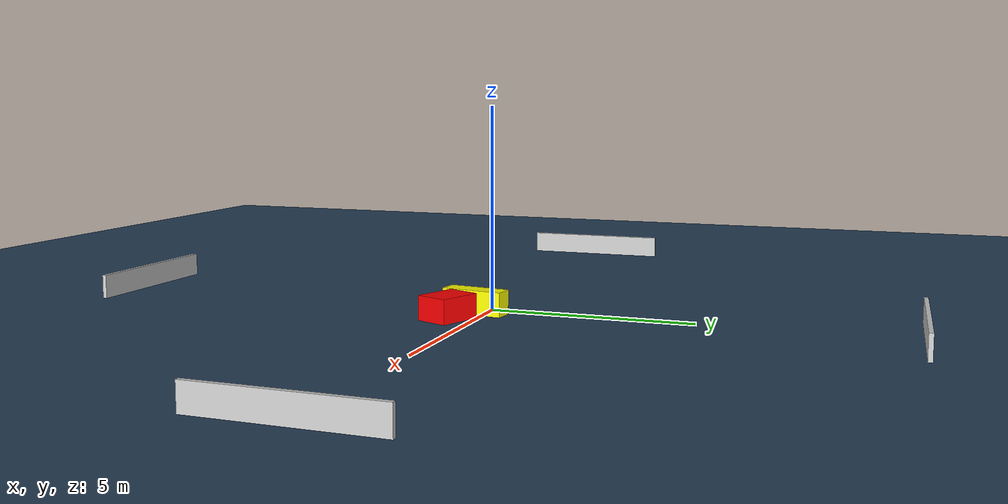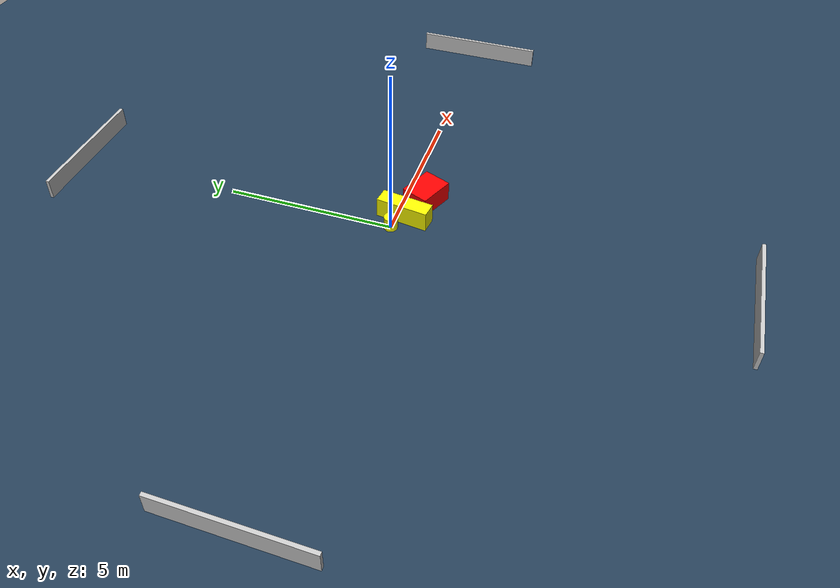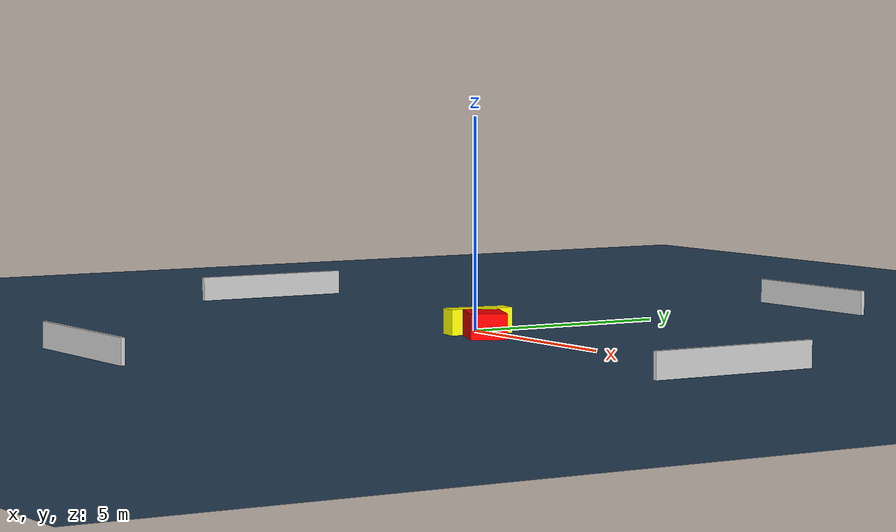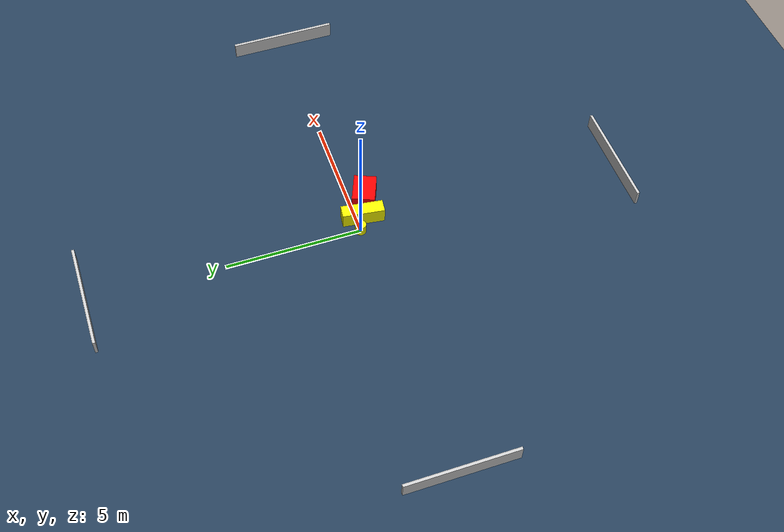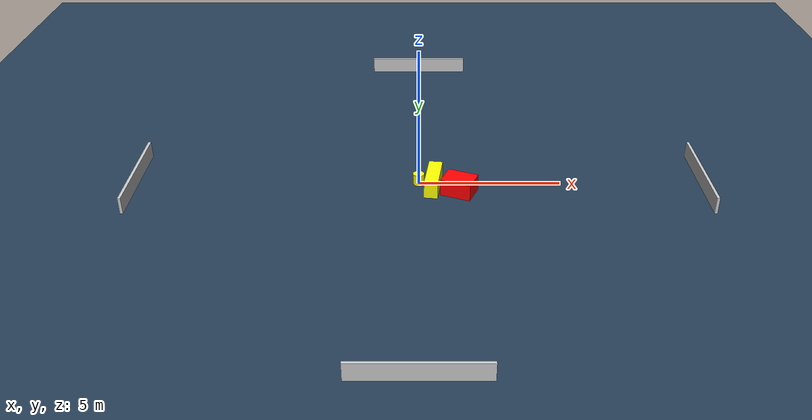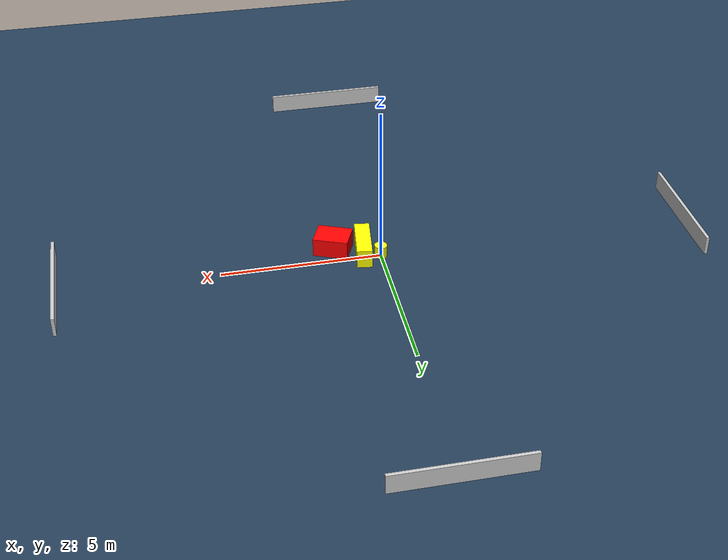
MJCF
<?xml version="1.0" ?>
<mujoco model="generated_environment">
  <option timestep="0.01" integrator="RK4" cone="elliptic"/>
  <default>
    <geom density="1"/>
  </default>
  <asset>
    <texture builtin="gradient" height="3072" name="skybox" rgb1="0.3 0.5 0.7" rgb2="0 0 0" type="skybox" width="512"/>
    <texture builtin="checker" height="300" name="groundplane" rgb1="0.2 0.3 0.4" rgb2="0.1 0.2 0.3" type="2d" width="300"/>
    <material name="groundplane" reflectance="0.2" texrepeat="5 5" texture="groundplane"/>
  </asset>
  <worldbody>
    <light dir="0 0 -1" directional="true" pos="0 0 1.5"/>
    <geom condim="3" friction="0.5 0.005 0.001" material="groundplane" name="floor" pos="0 0 0" size="0 0 0.05" type="plane"/>
    <body name="walls">
      <geom name="wall_1" condim="4" pos="-10.0 0.0 0.3" rgba="0.800000011920929 0.800000011920929 0.800000011920929 1.0" size="0.05 2.0 0.3" type="box"/>
      <geom name="wall_2" condim="4" pos="10.0 0.0 0.3" rgba="0.800000011920929 0.800000011920929 0.800000011920929 1.0" size="0.05 2.0 0.3" type="box"/>
      <geom name="wall_3" condim="4" pos="0.0 -10.0 0.3" rgba="0.800000011920929 0.800000011920929 0.800000011920929 1.0" size="2.0 0.05 0.3" type="box"/>
      <geom name="wall_4" condim="4" pos="0.0 10.0 0.3" rgba="0.800000011920929 0.800000011920929 0.800000011920929 1.0" size="2.0 0.05 0.3" type="box"/>
    </body>
    <body name="robot">
      <joint name="joint_x" type="slide" pos="0 0 0" axis="1 0 0"/>
      <joint name="joint_y" type="slide" pos="0 0 0" axis="0 1 0"/>
      <geom name="robot" type="cylinder" pos="0.0 0.0 0.2" size="0.2 0.2 0.0" mass="5.0" friction="1.0 0.005 0.0001" condim="4" rgba="1.0 1.0 0.0 1.0"/>
    </body>
    <body name="obstacle_1_movable">
      <geom name="obstacle_1_movable" condim="4" pos="0.5130883225491657 -0.24782138926785424 0.3" euler="0 0 82.55060310263099" friction="0.0 0.005 0.001" rgba="1.0 1.0 0.0 1.0" size="0.771434802716144 0.2404449604535443 0.3" type="box" mass="0.1"/>
      <joint type="free"/>
    </body>
    <body name="obstacle_2_static">
      <geom name="obstacle_2_static" condim="4" pos="1.4083288171966124 -0.6118892300126055 0.3" euler="0 0 67.42528434142216" friction="0.0 0.005 0.001" rgba="1.0 0.0 0.0 1.0" size="0.4195858012820873 0.5484791082630114 0.3" type="box"/>
    </body>
  </worldbody>
  <actuator>
    <motor name="actuator_x" joint="joint_x" gear="1" ctrlrange="-1 1"/>
    <motor name="actuator_y" joint="joint_y" gear="1" ctrlrange="-1 1"/>
  </actuator>
</mujoco>
